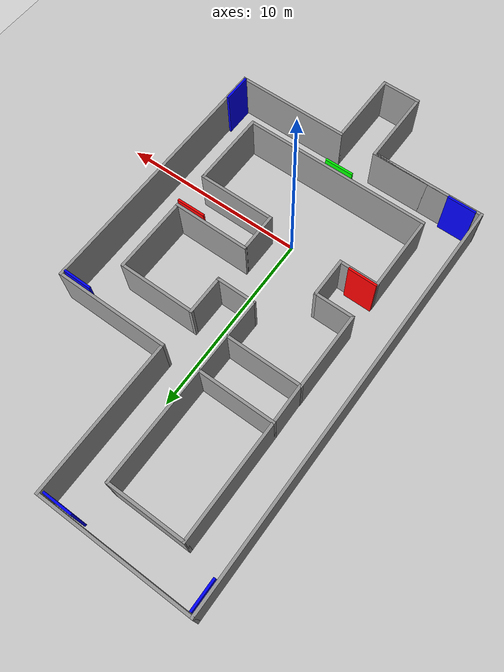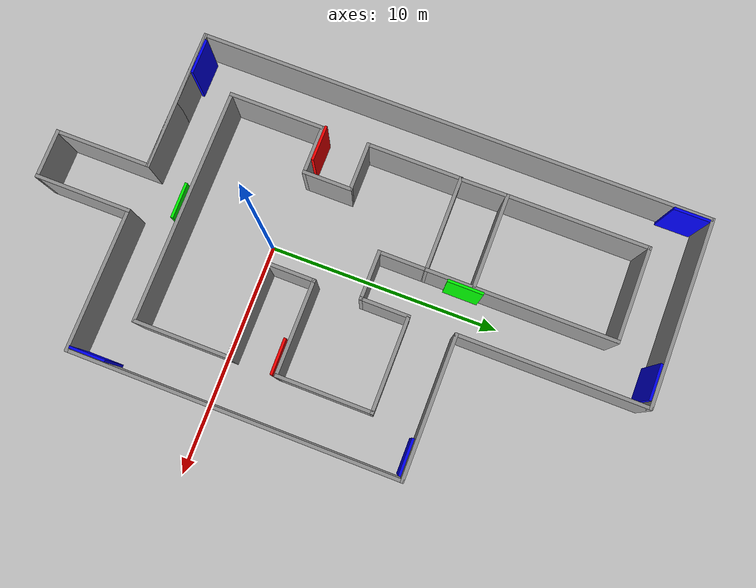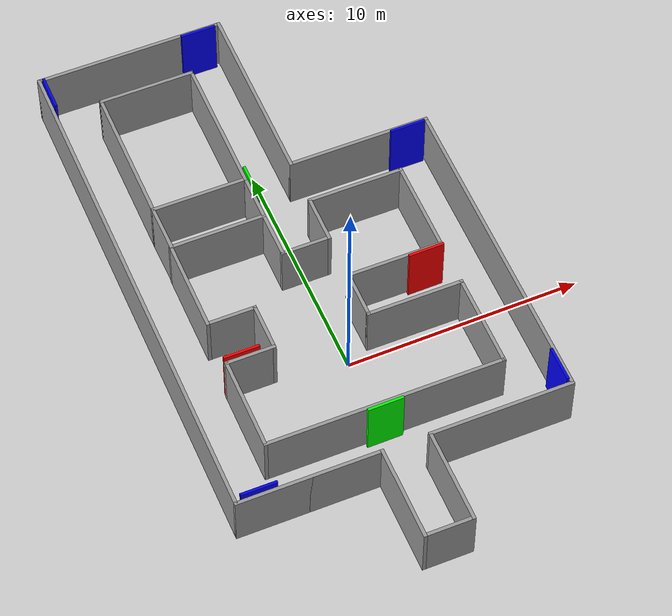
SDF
<sdf version="1.6">
 <world name="default">
  <light name="sun" type="directional">
   <pose>0 0 10 0 -0 0</pose>
   <diffuse>0.8 0.8 0.8 1</diffuse>
   <specular>0.2 0.2 0.2 1</specular>
   <attenuation>
    <range>1000</range>
    <constant>0.9</constant>
    <linear>0.01</linear>
    <quadratic>0.001</quadratic>
   </attenuation>
   <direction>-0.5 0.1 -0.9</direction>
  </light>
  <model name="ground_plane">
   <static>1</static>
   <link name="link">
    <collision name="collision">
     <geometry><plane><normal>0 0 1</normal><size>100 100</size></plane></geometry>
     <surface>
      <contact><collide_bitmask>65535</collide_bitmask></contact>
      <friction><ode><mu>100</mu><mu2>50</mu2></ode></friction>
     </surface>
    </collision>
    <visual name="visual">
     <cast_shadows>0</cast_shadows>
     <geometry><plane><normal>0 0 1</normal><size>100 100</size></plane></geometry>
     <material>
      <script><uri>file://media/materials/scripts/gazebo.material</uri><name>Gazebo/Grey</name></script>
     </material>
    </visual>
   </link>
  </model>
  <gravity>0 0 -9.8</gravity>
  <magnetic_field>6e-06 2.3e-05 -4.2e-05</magnetic_field>
  <atmosphere type="adiabatic"/>
  <physics name="default_physics" default="0" type="ode">
   <max_step_size>0.001</max_step_size>
   <real_time_factor>1</real_time_factor>
   <real_time_update_rate>1000</real_time_update_rate>
  </physics>
  <scene><ambient>0.4 0.4 0.4 1</ambient><background>0.7 0.7 0.7 1</background><shadows>1</shadows></scene>
  <spherical_coordinates>
   <surface_model>EARTH_WGS84</surface_model>
   <latitude_deg>0</latitude_deg>
   <longitude_deg>0</longitude_deg>
   <elevation>0</elevation>
   <heading_deg>0</heading_deg>
  </spherical_coordinates>
  <model name="FullScaleRobotMap">
   <pose>0.041369 3.42801 0 0 -0 1.56267</pose>
   <link name="Wall_13">
    <collision name="Wall_13_Collision">
     <geometry><box><size>4.15 0.15 2.5</size></box></geometry>
     <pose>0 0 1.25 0 -0 0</pose>
    </collision>
    <visual name="Wall_13_Visual">
     <pose>0 0 1.25 0 -0 0</pose>
     <geometry><box><size>4.15 0.15 2.5</size></box></geometry>
     <material>
      <script><uri>file://media/materials/scripts/gazebo.material</uri><name>Gazebo/Grey</name></script>
      <ambient>1 1 1 1</ambient>
     </material>
     <meta><layer>0</layer></meta>
    </visual>
    <pose>-11 -1 0 0 -0 0</pose>
   </link>
   <link name="Wall_15">
    <collision name="Wall_15_Collision">
     <geometry><box><size>6.15 0.15 2.5</size></box></geometry>
     <pose>0 0 1.25 0 -0 0</pose>
    </collision>
    <visual name="Wall_15_Visual">
     <pose>0 0 1.25 0 -0 0</pose>
     <geometry><box><size>6.15 0.15 2.5</size></box></geometry>
     <material>
      <script><uri>file://media/materials/scripts/gazebo.material</uri><name>Gazebo/Grey</name></script>
      <ambient>1 1 1 1</ambient>
     </material>
     <meta><layer>0</layer></meta>
    </visual>
    <pose>-9 -4 0 0 -0 -1.5708</pose>
   </link>
   <link name="Wall_17">
    <collision name="Wall_17_Collision">
     <geometry><box><size>14.15 0.15 2.5</size></box></geometry>
     <pose>0 0 1.25 0 -0 0</pose>
    </collision>
    <visual name="Wall_17_Visual">
     <pose>0 0 1.25 0 -0 0</pose>
     <geometry><box><size>14.15 0.15 2.5</size></box></geometry>
     <material>
      <script><uri>file://media/materials/scripts/gazebo.material</uri><name>Gazebo/Grey</name></script>
      <ambient>1 1 1 1</ambient>
     </material>
     <meta><layer>0</layer></meta>
    </visual>
    <pose>-2 -7 0 0 -0 0</pose>
   </link>
   <link name="Wall_19">
    <collision name="Wall_19_Collision">
     <geometry><box><size>6.15 0.15 2.5</size></box></geometry>
     <pose>0 0 1.25 0 -0 0</pose>
    </collision>
    <visual name="Wall_19_Visual">
     <pose>0 0 1.25 0 -0 0</pose>
     <geometry><box><size>6.15 0.15 2.5</size></box></geometry>
     <material>
      <script><uri>file://media/materials/scripts/gazebo.material</uri><name>Gazebo/Grey</name></script>
      <ambient>1 1 1 1</ambient>
     </material>
     <meta><layer>0</layer></meta>
    </visual>
    <pose>5 -4 0 0 -0 1.5708</pose>
   </link>
   <link name="Wall_21">
    <collision name="Wall_21_Collision">
     <geometry><box><size>8.15 0.15 2.5</size></box></geometry>
     <pose>0 0 1.25 0 -0 0</pose>
    </collision>
    <visual name="Wall_21_Visual">
     <pose>0 0 1.25 0 -0 0</pose>
     <geometry><box><size>8.15 0.15 2.5</size></box></geometry>
     <material>
      <script><uri>file://media/materials/scripts/gazebo.material</uri><name>Gazebo/Grey</name></script>
      <ambient>1 1 1 1</ambient>
     </material>
     <meta><layer>0</layer></meta>
    </visual>
    <pose>9 -1 0 0 -0 0</pose>
   </link>
   <link name="Wall_23">
    <collision name="Wall_23_Collision">
     <geometry><box><size>8.15 0.15 2.5</size></box></geometry>
     <pose>0 0 1.25 0 -0 0</pose>
    </collision>
    <visual name="Wall_23_Visual">
     <pose>0 0 1.25 0 -0 0</pose>
     <geometry><box><size>8.15 0.15 2.5</size></box></geometry>
     <material>
      <script><uri>file://media/materials/scripts/gazebo.material</uri><name>Gazebo/Grey</name></script>
      <ambient>1 1 1 1</ambient>
     </material>
     <meta><layer>0</layer></meta>
    </visual>
    <pose>13 3 0 0 -0 1.5708</pose>
   </link>
   <link name="Wall_25">
    <collision name="Wall_25_Collision">
     <geometry><box><size>6.15 0.15 2.5</size></box></geometry>
     <pose>0 0 1.25 0 -0 0</pose>
    </collision>
    <visual name="Wall_25_Visual">
     <pose>0 0 1.25 0 -0 0</pose>
     <geometry><box><size>6.15 0.15 2.5</size></box></geometry>
     <material>
      <script><uri>file://media/materials/scripts/gazebo.material</uri><name>Gazebo/Grey</name></script>
      <ambient>1 1 1 1</ambient>
     </material>
     <meta><layer>0</layer></meta>
    </visual>
    <pose>-9 4 0 0 -0 -1.5708</pose>
   </link>
   <link name="Wall_26">
    <collision name="Wall_26_Collision">
     <geometry><box><size>6.15 0.15 2.5</size></box></geometry>
     <pose>0 0 1.25 0 -0 0</pose>
    </collision>
    <visual name="Wall_26_Visual">
     <pose>0 0 1.25 0 -0 0</pose>
     <geometry><box><size>6.15 0.15 2.5</size></box></geometry>
     <material>
      <script><uri>file://media/materials/scripts/gazebo.material</uri><name>Gazebo/Grey</name></script>
      <ambient>1 1 1 1</ambient>
     </material>
     <meta><layer>0</layer></meta>
    </visual>
    <pose>-9 4 0 0 -0 1.5708</pose>
   </link>
   <link name="Wall_28">
    <collision name="Wall_28_Collision">
     <geometry><box><size>4.15 0.15 2.5</size></box></geometry>
     <pose>0 0 1.25 0 -0 0</pose>
    </collision>
    <visual name="Wall_28_Visual">
     <pose>0 0 1.25 0 -0 0</pose>
     <geometry><box><size>4.15 0.15 2.5</size></box></geometry>
     <material>
      <script><uri>file://media/materials/scripts/gazebo.material</uri><name>Gazebo/Grey</name></script>
      <ambient>1 1 1 1</ambient>
     </material>
     <meta><layer>0</layer></meta>
    </visual>
    <pose>-11 1 0 0 -0 3.14159</pose>
   </link>
   <link name="Wall_30">
    <collision name="Wall_30_Collision">
     <geometry><box><size>22.15 0.15 2.5</size></box></geometry>
     <pose>0 0 1.25 0 -0 0</pose>
    </collision>
    <visual name="Wall_30_Visual">
     <pose>0 0 1.25 0 -0 0</pose>
     <geometry><box><size>22.15 0.15 2.5</size></box></geometry>
     <material>
      <script><uri>file://media/materials/scripts/gazebo.material</uri><name>Gazebo/Grey</name></script>
      <ambient>1 1 1 1</ambient>
     </material>
     <meta><layer>0</layer></meta>
    </visual>
    <pose>2 7 0 0 -0 0</pose>
   </link>
   <link name="Wall_32">
    <collision name="Wall_32_Collision">
     <geometry><box><size>4.15 0.15 2.5</size></box></geometry>
     <pose>0 0 1.25 0 -0 0</pose>
    </collision>
    <visual name="Wall_32_Visual">
     <pose>0 0 1.25 0 -0 0</pose>
     <geometry><box><size>4.15 0.15 2.5</size></box></geometry>
     <material>
      <script><uri>file://media/materials/scripts/gazebo.material</uri><name>Gazebo/Grey</name></script>
      <ambient>1 1 1 1</ambient>
     </material>
     <meta><layer>0</layer></meta>
    </visual>
    <pose>-5 -5 0 0 -0 0</pose>
   </link>
   <link name="Wall_34">
    <collision name="Wall_34_Collision">
     <geometry><box><size>4.15 0.15 2.5</size></box></geometry>
     <pose>0 0 1.25 0 -0 0</pose>
    </collision>
    <visual name="Wall_34_Visual">
     <pose>0 0 1.25 0 -0 0</pose>
     <geometry><box><size>4.15 0.15 2.5</size></box></geometry>
     <material>
      <script><uri>file://media/materials/scripts/gazebo.material</uri><name>Gazebo/Grey</name></script>
      <ambient>1 1 1 1</ambient>
     </material>
     <meta><layer>0</layer></meta>
    </visual>
    <pose>-3 -3 0 0 -0 1.5708</pose>
   </link>
   <link name="Wall_36">
    <collision name="Wall_36_Collision">
     <geometry><box><size>2.15 0.15 2.5</size></box></geometry>
     <pose>0 0 1.25 0 -0 0</pose>
    </collision>
    <visual name="Wall_36_Visual">
     <pose>0 0 1.25 0 -0 0</pose>
     <geometry><box><size>2.15 0.15 2.5</size></box></geometry>
     <material>
      <script><uri>file://media/materials/scripts/gazebo.material</uri><name>Gazebo/Grey</name></script>
      <ambient>1 1 1 1</ambient>
     </material>
     <meta><layer>0</layer></meta>
    </visual>
    <pose>-2 -1 0 0 -0 0</pose>
   </link>
   <link name="Wall_38">
    <collision name="Wall_38_Collision">
     <geometry><box><size>4.15 0.15 2.5</size></box></geometry>
     <pose>0 0 1.25 0 -0 0</pose>
    </collision>
    <visual name="Wall_38_Visual">
     <pose>0 0 1.25 0 -0 0</pose>
     <geometry><box><size>4.15 0.15 2.5</size></box></geometry>
     <material>
      <script><uri>file://media/materials/scripts/gazebo.material</uri><name>Gazebo/Grey</name></script>
      <ambient>1 1 1 1</ambient>
     </material>
     <meta><layer>0</layer></meta>
    </visual>
    <pose>-1 -3 0 0 -0 -1.5708</pose>
   </link>
   <link name="Wall_40">
    <collision name="Wall_40_Collision">
     <geometry><box><size>4.15 0.15 2.5</size></box></geometry>
     <pose>0 0 1.25 0 -0 0</pose>
    </collision>
    <visual name="Wall_40_Visual">
     <pose>0 0 1.25 0 -0 0</pose>
     <geometry><box><size>4.15 0.15 2.5</size></box></geometry>
     <material>
      <script><uri>file://media/materials/scripts/gazebo.material</uri><name>Gazebo/Grey</name></script>
      <ambient>1 1 1 1</ambient>
     </material>
     <meta><layer>0</layer></meta>
    </visual>
    <pose>1 -5 0 0 -0 0</pose>
   </link>
   <link name="Wall_42">
    <collision name="Wall_42_Collision">
     <geometry><box><size>4.15 0.15 2.5</size></box></geometry>
     <pose>0 0 1.25 0 -0 0</pose>
    </collision>
    <visual name="Wall_42_Visual">
     <pose>0 0 1.25 0 -0 0</pose>
     <geometry><box><size>4.15 0.15 2.5</size></box></geometry>
     <material>
      <script><uri>file://media/materials/scripts/gazebo.material</uri><name>Gazebo/Grey</name></script>
      <ambient>1 1 1 1</ambient>
     </material>
     <meta><layer>0</layer></meta>
    </visual>
    <pose>3 -3 0 0 -0 1.5708</pose>
   </link>
   <link name="Wall_44">
    <collision name="Wall_44_Collision">
     <geometry><box><size>2.15 0.15 2.5</size></box></geometry>
     <pose>0 0 1.25 0 -0 0</pose>
    </collision>
    <visual name="Wall_44_Visual">
     <pose>0 0 1.25 0 -0 0</pose>
     <geometry><box><size>2.15 0.15 2.5</size></box></geometry>
     <material>
      <script><uri>file://media/materials/scripts/gazebo.material</uri><name>Gazebo/Grey</name></script>
      <ambient>1 1 1 1</ambient>
     </material>
     <meta><layer>0</layer></meta>
    </visual>
    <pose>2 -1 0 0 -0 3.14159</pose>
   </link>
   <link name="Wall_46">
    <collision name="Wall_46_Collision">
     <geometry><box><size>2.15 0.15 2.5</size></box></geometry>
     <pose>0 0 1.25 0 -0 0</pose>
    </collision>
    <visual name="Wall_46_Visual">
     <pose>0 0 1.25 0 -0 0</pose>
     <geometry><box><size>2.15 0.15 2.5</size></box></geometry>
     <material>
      <script><uri>file://media/materials/scripts/gazebo.material</uri><name>Gazebo/Grey</name></script>
      <ambient>1 1 1 1</ambient>
     </material>
     <meta><layer>0</layer></meta>
    </visual>
    <pose>1 0 0 0 -0 1.5708</pose>
   </link>
   <link name="Wall_48">
    <collision name="Wall_48_Collision">
     <geometry><box><size>2.15 0.15 2.5</size></box></geometry>
     <pose>0 0 1.25 0 -0 0</pose>
    </collision>
    <visual name="Wall_48_Visual">
     <pose>0 0 1.25 0 -0 0</pose>
     <geometry><box><size>2.15 0.15 2.5</size></box></geometry>
     <material>
      <script><uri>file://media/materials/scripts/gazebo.material</uri><name>Gazebo/Grey</name></script>
      <ambient>1 1 1 1</ambient>
     </material>
     <meta><layer>0</layer></meta>
    </visual>
    <pose>2 1 0 0 -0 0</pose>
   </link>
   <link name="Wall_50">
    <collision name="Wall_50_Collision">
     <geometry><box><size>4.15 0.15 2.5</size></box></geometry>
     <pose>0 0 1.25 0 -0 0</pose>
    </collision>
    <visual name="Wall_50_Visual">
     <pose>0 0 1.25 0 -0 0</pose>
     <geometry><box><size>4.15 0.15 2.5</size></box></geometry>
     <material>
      <script><uri>file://media/materials/scripts/gazebo.material</uri><name>Gazebo/Grey</name></script>
      <ambient>1 1 1 1</ambient>
     </material>
     <meta><layer>0</layer></meta>
    </visual>
    <pose>3 3 0 0 -0 1.5708</pose>
   </link>
   <link name="Wall_52">
    <collision name="Wall_52_Collision">
     <geometry><box><size>4.15 0.15 2.5</size></box></geometry>
     <pose>0 0 1.25 0 -0 0</pose>
    </collision>
    <visual name="Wall_52_Visual">
     <pose>0 0 1.25 0 -0 0</pose>
     <geometry><box><size>4.15 0.15 2.5</size></box></geometry>
     <material>
      <script><uri>file://media/materials/scripts/gazebo.material</uri><name>Gazebo/Grey</name></script>
      <ambient>1 1 1 1</ambient>
     </material>
     <meta><layer>0</layer></meta>
    </visual>
    <pose>1 5 0 0 -0 3.14159</pose>
   </link>
   <link name="Wall_54">
    <collision name="Wall_54_Collision">
     <geometry><box><size>2.15 0.15 2.5</size></box></geometry>
     <pose>0 0 1.25 0 -0 0</pose>
    </collision>
    <visual name="Wall_54_Visual">
     <pose>0 0 1.25 0 -0 0</pose>
     <geometry><box><size>2.15 0.15 2.5</size></box></geometry>
     <material>
      <script><uri>file://media/materials/scripts/gazebo.material</uri><name>Gazebo/Grey</name></script>
      <ambient>1 1 1 1</ambient>
     </material>
     <meta><layer>0</layer></meta>
    </visual>
    <pose>-1 4 0 0 -0 -1.5708</pose>
   </link>
   <link name="Wall_56">
    <collision name="Wall_56_Collision">
     <geometry><box><size>2.15 0.15 2.5</size></box></geometry>
     <pose>0 0 1.25 0 -0 0</pose>
    </collision>
    <visual name="Wall_56_Visual">
     <pose>0 0 1.25 0 -0 0</pose>
     <geometry><box><size>2.15 0.15 2.5</size></box></geometry>
     <material>
      <script><uri>file://media/materials/scripts/gazebo.material</uri><name>Gazebo/Grey</name></script>
      <ambient>1 1 1 1</ambient>
     </material>
     <meta><layer>0</layer></meta>
    </visual>
    <pose>-2 3 0 0 -0 3.14159</pose>
   </link>
   <link name="Wall_58">
    <collision name="Wall_58_Collision">
     <geometry><box><size>2.15 0.15 2.5</size></box></geometry>
     <pose>0 0 1.25 0 -0 0</pose>
    </collision>
    <visual name="Wall_58_Visual">
     <pose>0 0 1.25 0 -0 0</pose>
     <geometry><box><size>2.15 0.15 2.5</size></box></geometry>
     <material>
      <script><uri>file://media/materials/scripts/gazebo.material</uri><name>Gazebo/Grey</name></script>
      <ambient>1 1 1 1</ambient>
     </material>
     <meta><layer>0</layer></meta>
    </visual>
    <pose>-3 4 0 0 -0 1.5708</pose>
   </link>
   <link name="Wall_60">
    <collision name="Wall_60_Collision">
     <geometry><box><size>4.15 0.15 2.5</size></box></geometry>
     <pose>0 0 1.25 0 -0 0</pose>
    </collision>
    <visual name="Wall_60_Visual">
     <pose>0 0 1.25 0 -0 0</pose>
     <geometry><box><size>4.15 0.15 2.5</size></box></geometry>
     <material>
      <script><uri>file://media/materials/scripts/gazebo.material</uri><name>Gazebo/Grey</name></script>
      <ambient>1 1 1 1</ambient>
     </material>
     <meta><layer>0</layer></meta>
    </visual>
    <pose>-5 5 0 0 -0 3.14159</pose>
   </link>
   <link name="Wall_62">
    <collision name="Wall_62_Collision">
     <geometry><box><size>10.15 0.15 2.5</size></box></geometry>
     <pose>0 0 1.25 0 -0 0</pose>
    </collision>
    <visual name="Wall_62_Visual">
     <pose>0 0 1.25 0 -0 0</pose>
     <geometry><box><size>10.15 0.15 2.5</size></box></geometry>
     <material>
      <script><uri>file://media/materials/scripts/gazebo.material</uri><name>Gazebo/Grey</name></script>
      <ambient>1 1 1 1</ambient>
     </material>
     <meta><layer>0</layer></meta>
    </visual>
    <pose>-7 0 0 0 -0 -1.5708</pose>
   </link>
   <link name="Wall_64">
    <collision name="Wall_64_Collision">
     <geometry><box><size>4.15 0.15 2.5</size></box></geometry>
     <pose>0 0 1.25 0 -0 0</pose>
    </collision>
    <visual name="Wall_64_Visual">
     <pose>0 0 1.25 0 -0 0</pose>
     <geometry><box><size>4.15 0.15 2.5</size></box></geometry>
     <material>
      <script><uri>file://media/materials/scripts/gazebo.material</uri><name>Gazebo/Grey</name></script>
      <ambient>1 1 1 1</ambient>
     </material>
     <meta><layer>0</layer></meta>
    </visual>
    <pose>5 3 0 0 -0 1.5708</pose>
   </link>
   <link name="Wall_65">
    <collision name="Wall_65_Collision">
     <geometry><box><size>6.15 0.15 2.5</size></box></geometry>
     <pose>0 0 1.25 0 -0 0</pose>
    </collision>
    <visual name="Wall_65_Visual">
     <pose>0 0 1.25 0 -0 0</pose>
     <geometry><box><size>6.15 0.15 2.5</size></box></geometry>
     <material>
      <script><uri>file://media/materials/scripts/gazebo.material</uri><name>Gazebo/Grey</name></script>
      <ambient>1 1 1 1</ambient>
     </material>
     <meta><layer>0</layer></meta>
    </visual>
    <pose>8 5 0 0 -0 0</pose>
   </link>
   <link name="Wall_66">
    <collision name="Wall_66_Collision">
     <geometry><box><size>4.15 0.15 2.5</size></box></geometry>
     <pose>0 0 1.25 0 -0 0</pose>
    </collision>
    <visual name="Wall_66_Visual">
     <pose>0 0 1.25 0 -0 0</pose>
     <geometry><box><size>4.15 0.15 2.5</size></box></geometry>
     <material>
      <script><uri>file://media/materials/scripts/gazebo.material</uri><name>Gazebo/Grey</name></script>
      <ambient>1 1 1 1</ambient>
     </material>
     <meta><layer>0</layer></meta>
    </visual>
    <pose>11 3 0 0 -0 -1.5708</pose>
   </link>
   <link name="Wall_67">
    <collision name="Wall_67_Collision">
     <geometry><box><size>6.15 0.15 2.5</size></box></geometry>
     <pose>0 0 1.25 0 -0 0</pose>
    </collision>
    <visual name="Wall_67_Visual">
     <pose>0 0 1.25 0 -0 0</pose>
     <geometry><box><size>6.15 0.15 2.5</size></box></geometry>
     <material>
      <script><uri>file://media/materials/scripts/gazebo.material</uri><name>Gazebo/Grey</name></script>
      <ambient>1 1 1 1</ambient>
     </material>
     <meta><layer>0</layer></meta>
    </visual>
    <pose>8 1 0 0 -0 3.14159</pose>
   </link>
   <link name="Wall_8">
    <collision name="Wall_8_Collision">
     <geometry><box><size>2.15 0.15 2.5</size></box></geometry>
     <pose>0 0 1.25 0 -0 0</pose>
    </collision>
    <visual name="Wall_8_Visual">
     <pose>0 0 1.25 0 -0 0</pose>
     <geometry><box><size>2.15 0.15 2.5</size></box></geometry>
     <material>
      <script><uri>file://media/materials/scripts/gazebo.material</uri><name>Gazebo/Grey</name></script>
      <ambient>1 1 1 1</ambient>
     </material>
     <meta><layer>0</layer></meta>
    </visual>
    <pose>-13 0 0 0 -0 -1.5708</pose>
   </link>
   <static>1</static>
  </model>
  <model name="GreenSignalFIXED">
   <link name="link_0">
    <inertial>
     <mass>0.45872</mass>
     <inertia>
      <ixx>0.278241</ixx>
      <ixy>0</ixy>
      <ixz>0</ixz>
      <iyy>0.36633</iyy>
      <iyz>0</iyz>
      <izz>0.0890441</izz>
     </inertia>
    </inertial>
    <self_collide>1</self_collide>
    <visual name="visual">
     <geometry><box><size>1.52213 0.111792 2.69559</size></box></geometry>
     <material>
      <lighting>1</lighting>
      <script><uri>file://media/materials/scripts/gazebo.material</uri><name>Gazebo/Grey</name></script>
      <shader type="pixel"><normal_map>__default__</normal_map></shader>
      <ambient>0 1 0 1</ambient>
      <diffuse>0 1 0 1</diffuse>
      <specular>0 1 0 1</specular>
      <emissive>0 1 0 1</emissive>
     </material>
    </visual>
    <collision name="collision">
     <geometry><box><size>1.52213 0.111792 2.69559</size></box></geometry>
     <surface>
      <friction>
       <ode><mu>1</mu><mu2>1</mu2><fdir1>0 0 0</fdir1><slip1>0</slip1><slip2>0</slip2></ode>
       <torsional>
        <coefficient>1</coefficient>
        <patch_radius>0</patch_radius>
        <surface_radius>0</surface_radius>
        <use_patch_radius>1</use_patch_radius>
        <ode><slip>0</slip></ode>
       </torsional>
      </friction>
      <bounce><restitution_coefficient>0</restitution_coefficient><threshold>1e+06</threshold></bounce>
      <contact>
       <collide_without_contact>0</collide_without_contact>
       <collide_without_contact_bitmask>1</collide_without_contact_bitmask>
       <collide_bitmask>1</collide_bitmask>
       <ode>
        <soft_cfm>0</soft_cfm>
        <soft_erp>0.2</soft_erp>
        <kp>1e+13</kp>
        <kd>1</kd>
        <max_vel>0.01</max_vel>
        <min_depth>0</min_depth>
       </ode>
       <bullet>
        <split_impulse>1</split_impulse>
        <split_impulse_penetration_threshold>-0.01</split_impulse_penetration_threshold>
        <soft_cfm>0</soft_cfm>
        <soft_erp>0.2</soft_erp>
        <kp>1e+13</kp>
        <kd>1</kd>
       </bullet>
      </contact>
     </surface>
    </collision>
   </link>
   <static>0</static>
   <pose>-0.094117 -3.77025 1.34779 0 0 -1e-06</pose>
  </model>
  <model name="GreenSignalFIXED_clone">
   <link name="link_0">
    <inertial>
     <mass>0.45872</mass>
     <inertia>
      <ixx>0.278241</ixx>
      <ixy>0</ixy>
      <ixz>0</ixz>
      <iyy>0.36633</iyy>
      <iyz>0</iyz>
      <izz>0.0890441</izz>
     </inertia>
    </inertial>
    <self_collide>1</self_collide>
    <visual name="visual">
     <geometry><box><size>1.52213 0.111792 2.69559</size></box></geometry>
     <material>
      <lighting>1</lighting>
      <script><uri>file://media/materials/scripts/gazebo.material</uri><name>Gazebo/Grey</name></script>
      <shader type="pixel"><normal_map>__default__</normal_map></shader>
      <ambient>0 1 0 1</ambient>
      <diffuse>0 1 0 1</diffuse>
      <specular>0 1 0 1</specular>
      <emissive>0 1 0 1</emissive>
     </material>
    </visual>
    <collision name="collision">
     <geometry><box><size>1.52213 0.111792 2.69559</size></box></geometry>
     <surface>
      <friction>
       <ode><mu>1</mu><mu2>1</mu2><fdir1>0 0 0</fdir1><slip1>0</slip1><slip2>0</slip2></ode>
       <torsional>
        <coefficient>1</coefficient>
        <patch_radius>0</patch_radius>
        <surface_radius>0</surface_radius>
        <use_patch_radius>1</use_patch_radius>
        <ode><slip>0</slip></ode>
       </torsional>
      </friction>
      <bounce><restitution_coefficient>0</restitution_coefficient><threshold>1e+06</threshold></bounce>
      <contact>
       <collide_without_contact>0</collide_without_contact>
       <collide_without_contact_bitmask>1</collide_without_contact_bitmask>
       <collide_bitmask>1</collide_bitmask>
       <ode>
        <soft_cfm>0</soft_cfm>
        <soft_erp>0.2</soft_erp>
        <kp>1e+13</kp>
        <kd>1</kd>
        <max_vel>0.01</max_vel>
        <min_depth>0</min_depth>
       </ode>
       <bullet>
        <split_impulse>1</split_impulse>
        <split_impulse_penetration_threshold>-0.01</split_impulse_penetration_threshold>
        <soft_cfm>0</soft_cfm>
        <soft_erp>0.2</soft_erp>
        <kp>1e+13</kp>
        <kd>1</kd>
       </bullet>
      </contact>
     </surface>
    </collision>
   </link>
   <static>0</static>
   <pose>-0.788295 8.12717 1.3478 0 0 -1.58099</pose>
  </model>
  <model name="BlueSignalFIXED">
   <link name="link_0">
    <inertial>
     <mass>0.45872</mass>
     <inertia>
      <ixx>0.278241</ixx>
      <ixy>0</ixy>
      <ixz>0</ixz>
      <iyy>0.36633</iyy>
      <iyz>0</iyz>
      <izz>0.0890441</izz>
     </inertia>
    </inertial>
    <self_collide>1</self_collide>
    <visual name="visual">
     <geometry><box><size>1.52213 0.111792 2.69559</size></box></geometry>
     <material>
      <lighting>1</lighting>
      <script><uri>file://media/materials/scripts/gazebo.material</uri><name>Gazebo/Grey</name></script>
      <shader type="pixel"><normal_map>__default__</normal_map></shader>
      <ambient>0 0 1 1</ambient>
      <diffuse>0 0 1 1</diffuse>
      <specular>0 0 1 1</specular>
      <emissive>0 0 1 1</emissive>
     </material>
    </visual>
    <collision name="collision">
     <geometry><box><size>1.52213 0.111792 2.69559</size></box></geometry>
     <surface>
      <friction>
       <ode><mu>1</mu><mu2>1</mu2><fdir1>0 0 0</fdir1><slip1>0</slip1><slip2>0</slip2></ode>
       <torsional>
        <coefficient>1</coefficient>
        <patch_radius>0</patch_radius>
        <surface_radius>0</surface_radius>
        <use_patch_radius>1</use_patch_radius>
        <ode><slip>0</slip></ode>
       </torsional>
      </friction>
      <bounce><restitution_coefficient>0</restitution_coefficient><threshold>1e+06</threshold></bounce>
      <contact>
       <collide_without_contact>0</collide_without_contact>
       <collide_without_contact_bitmask>1</collide_without_contact_bitmask>
       <collide_bitmask>1</collide_bitmask>
       <ode>
        <soft_cfm>0</soft_cfm>
        <soft_erp>0.2</soft_erp>
        <kp>1e+13</kp>
        <kd>1</kd>
        <max_vel>0.01</max_vel>
        <min_depth>0</min_depth>
       </ode>
       <bullet>
        <split_impulse>1</split_impulse>
        <split_impulse_penetration_threshold>-0.01</split_impulse_penetration_threshold>
        <soft_cfm>0</soft_cfm>
        <soft_erp>0.2</soft_erp>
        <kp>1e+13</kp>
        <kd>1</kd>
       </bullet>
      </contact>
     </surface>
    </collision>
   </link>
   <static>0</static>
   <pose>-6.69688 15.6063 1.34779 0 0 -1.57645</pose>
  </model>
  <model name="BlueSignalFIXED_clone">
   <link name="link_0">
    <inertial>
     <mass>0.45872</mass>
     <inertia>
      <ixx>0.278241</ixx>
      <ixy>0</ixy>
      <ixz>0</ixz>
      <iyy>0.36633</iyy>
      <iyz>0</iyz>
      <izz>0.0890441</izz>
     </inertia>
    </inertial>
    <self_collide>1</self_collide>
    <visual name="visual">
     <geometry><box><size>1.52213 0.111792 2.69559</size></box></geometry>
     <material>
      <lighting>1</lighting>
      <script><uri>file://media/materials/scripts/gazebo.material</uri><name>Gazebo/Grey</name></script>
      <shader type="pixel"><normal_map>__default__</normal_map></shader>
      <ambient>0 0 1 1</ambient>
      <diffuse>0 0 1 1</diffuse>
      <specular>0 0 1 1</specular>
      <emissive>0 0 1 1</emissive>
     </material>
    </visual>
    <collision name="collision">
     <geometry><box><size>1.52213 0.111792 2.69559</size></box></geometry>
     <surface>
      <friction>
       <ode><mu>1</mu><mu2>1</mu2><fdir1>0 0 0</fdir1><slip1>0</slip1><slip2>0</slip2></ode>
       <torsional>
        <coefficient>1</coefficient>
        <patch_radius>0</patch_radius>
        <surface_radius>0</surface_radius>
        <use_patch_radius>1</use_patch_radius>
        <ode><slip>0</slip></ode>
       </torsional>
      </friction>
      <bounce><restitution_coefficient>0</restitution_coefficient><threshold>1e+06</threshold></bounce>
      <contact>
       <collide_without_contact>0</collide_without_contact>
       <collide_without_contact_bitmask>1</collide_without_contact_bitmask>
       <collide_bitmask>1</collide_bitmask>
       <ode>
        <soft_cfm>0</soft_cfm>
        <soft_erp>0.2</soft_erp>
        <kp>1e+13</kp>
        <kd>1</kd>
        <max_vel>0.01</max_vel>
        <min_depth>0</min_depth>
       </ode>
       <bullet>
        <split_impulse>1</split_impulse>
        <split_impulse_penetration_threshold>-0.01</split_impulse_penetration_threshold>
        <soft_cfm>0</soft_cfm>
        <soft_erp>0.2</soft_erp>
        <kp>1e+13</kp>
        <kd>1</kd>
       </bullet>
      </contact>
     </surface>
    </collision>
   </link>
   <static>0</static>
   <pose>6.82456 -4.75577 1.34779 0 0 -1.57645</pose>
  </model>
  <model name="BlueSignalFIXED_clone_0">
   <link name="link_0">
    <inertial>
     <mass>0.45872</mass>
     <inertia>
      <ixx>0.278241</ixx>
      <ixy>0</ixy>
      <ixz>0</ixz>
      <iyy>0.36633</iyy>
      <iyz>0</iyz>
      <izz>0.0890441</izz>
     </inertia>
    </inertial>
    <self_collide>1</self_collide>
    <visual name="visual">
     <geometry><box><size>1.52213 0.111792 2.69559</size></box></geometry>
     <material>
      <lighting>1</lighting>
      <script><uri>file://media/materials/scripts/gazebo.material</uri><name>Gazebo/Grey</name></script>
      <shader type="pixel"><normal_map>__default__</normal_map></shader>
      <ambient>0 0 1 1</ambient>
      <diffuse>0 0 1 1</diffuse>
      <specular>0 0 1 1</specular>
      <emissive>0 0 1 1</emissive>
     </material>
    </visual>
    <collision name="collision">
     <geometry><box><size>1.52213 0.111792 2.69559</size></box></geometry>
     <surface>
      <friction>
       <ode><mu>1</mu><mu2>1</mu2><fdir1>0 0 0</fdir1><slip1>0</slip1><slip2>0</slip2></ode>
       <torsional>
        <coefficient>1</coefficient>
        <patch_radius>0</patch_radius>
        <surface_radius>0</surface_radius>
        <use_patch_radius>1</use_patch_radius>
        <ode><slip>0</slip></ode>
       </torsional>
      </friction>
      <bounce><restitution_coefficient>0</restitution_coefficient><threshold>1e+06</threshold></bounce>
      <contact>
       <collide_without_contact>0</collide_without_contact>
       <collide_without_contact_bitmask>1</collide_without_contact_bitmask>
       <collide_bitmask>1</collide_bitmask>
       <ode>
        <soft_cfm>0</soft_cfm>
        <soft_erp>0.2</soft_erp>
        <kp>1e+13</kp>
        <kd>1</kd>
        <max_vel>0.01</max_vel>
        <min_depth>0</min_depth>
       </ode>
       <bullet>
        <split_impulse>1</split_impulse>
        <split_impulse_penetration_threshold>-0.01</split_impulse_penetration_threshold>
        <soft_cfm>0</soft_cfm>
        <soft_erp>0.2</soft_erp>
        <kp>1e+13</kp>
        <kd>1</kd>
       </bullet>
      </contact>
     </surface>
    </collision>
   </link>
   <static>0</static>
   <pose>0.149653 16.24 1.34779 -0 -2e-06 3.13246</pose>
  </model>
  <model name="BlueSignalFIXED_clone_0_clone">
   <link name="link_0">
    <inertial>
     <mass>0.45872</mass>
     <inertia>
      <ixx>0.278241</ixx>
      <ixy>0</ixy>
      <ixz>0</ixz>
      <iyy>0.36633</iyy>
      <iyz>0</iyz>
      <izz>0.0890441</izz>
     </inertia>
    </inertial>
    <self_collide>1</self_collide>
    <visual name="visual">
     <geometry><box><size>1.52213 0.111792 2.69559</size></box></geometry>
     <material>
      <lighting>1</lighting>
      <script><uri>file://media/materials/scripts/gazebo.material</uri><name>Gazebo/Grey</name></script>
      <shader type="pixel"><normal_map>__default__</normal_map></shader>
      <ambient>0 0 1 1</ambient>
      <diffuse>0 0 1 1</diffuse>
      <specular>0 0 1 1</specular>
      <emissive>0 0 1 1</emissive>
     </material>
    </visual>
    <collision name="collision">
     <geometry><box><size>1.52213 0.111792 2.69559</size></box></geometry>
     <surface>
      <friction>
       <ode><mu>1</mu><mu2>1</mu2><fdir1>0 0 0</fdir1><slip1>0</slip1><slip2>0</slip2></ode>
       <torsional>
        <coefficient>1</coefficient>
        <patch_radius>0</patch_radius>
        <surface_radius>0</surface_radius>
        <use_patch_radius>1</use_patch_radius>
        <ode><slip>0</slip></ode>
       </torsional>
      </friction>
      <bounce><restitution_coefficient>0</restitution_coefficient><threshold>1e+06</threshold></bounce>
      <contact>
       <collide_without_contact>0</collide_without_contact>
       <collide_without_contact_bitmask>1</collide_without_contact_bitmask>
       <collide_bitmask>1</collide_bitmask>
       <ode>
        <soft_cfm>0</soft_cfm>
        <soft_erp>0.2</soft_erp>
        <kp>1e+13</kp>
        <kd>1</kd>
        <max_vel>0.01</max_vel>
        <min_depth>0</min_depth>
       </ode>
       <bullet>
        <split_impulse>1</split_impulse>
        <split_impulse_penetration_threshold>-0.01</split_impulse_penetration_threshold>
        <soft_cfm>0</soft_cfm>
        <soft_erp>0.2</soft_erp>
        <kp>1e+13</kp>
        <kd>1</kd>
       </bullet>
      </contact>
     </surface>
    </collision>
   </link>
   <static>0</static>
   <pose>6.18447 8.19935 1.3478 0 -0 3.13248</pose>
  </model>
  <model name="BlueSignalFIXED_clone_0_clone_0">
   <link name="link_0">
    <inertial>
     <mass>0.45872</mass>
     <inertia>
      <ixx>0.278241</ixx>
      <ixy>0</ixy>
      <ixz>0</ixz>
      <iyy>0.36633</iyy>
      <iyz>0</iyz>
      <izz>0.0890441</izz>
     </inertia>
    </inertial>
    <self_collide>1</self_collide>
    <visual name="visual">
     <geometry><box><size>1.52213 0.111792 2.69559</size></box></geometry>
     <material>
      <lighting>1</lighting>
      <script><uri>file://media/materials/scripts/gazebo.material</uri><name>Gazebo/Grey</name></script>
      <shader type="pixel"><normal_map>__default__</normal_map></shader>
      <ambient>0 0 1 1</ambient>
      <diffuse>0 0 1 1</diffuse>
      <specular>0 0 1 1</specular>
      <emissive>0 0 1 1</emissive>
     </material>
    </visual>
    <collision name="collision">
     <geometry><box><size>1.52213 0.111792 2.69559</size></box></geometry>
     <surface>
      <friction>
       <ode><mu>1</mu><mu2>1</mu2><fdir1>0 0 0</fdir1><slip1>0</slip1><slip2>0</slip2></ode>
       <torsional>
        <coefficient>1</coefficient>
        <patch_radius>0</patch_radius>
        <surface_radius>0</surface_radius>
        <use_patch_radius>1</use_patch_radius>
        <ode><slip>0</slip></ode>
       </torsional>
      </friction>
      <bounce><restitution_coefficient>0</restitution_coefficient><threshold>1e+06</threshold></bounce>
      <contact>
       <collide_without_contact>0</collide_without_contact>
       <collide_without_contact_bitmask>1</collide_without_contact_bitmask>
       <collide_bitmask>1</collide_bitmask>
       <ode>
        <soft_cfm>0</soft_cfm>
        <soft_erp>0.2</soft_erp>
        <kp>1e+13</kp>
        <kd>1</kd>
        <max_vel>0.01</max_vel>
        <min_depth>0</min_depth>
       </ode>
       <bullet>
        <split_impulse>1</split_impulse>
        <split_impulse_penetration_threshold>-0.01</split_impulse_penetration_threshold>
        <soft_cfm>0</soft_cfm>
        <soft_erp>0.2</soft_erp>
        <kp>1e+13</kp>
        <kd>1</kd>
       </bullet>
      </contact>
     </surface>
    </collision>
   </link>
   <static>0</static>
   <pose>-6.02119 -5.34517 1.34779 -0 -2e-06 3.13246</pose>
  </model>
  <model name="RedSignalFIXED">
   <link name="link_0">
    <pose>-3.81189 0.614156 -0 0 -0 0</pose>
    <inertial>
     <mass>0.45872</mass>
     <inertia>
      <ixx>0.278241</ixx>
      <ixy>0</ixy>
      <ixz>0</ixz>
      <iyy>0.36633</iyy>
      <iyz>0</iyz>
      <izz>0.0890441</izz>
     </inertia>
    </inertial>
    <self_collide>1</self_collide>
    <visual name="visual">
     <geometry><box><size>1.52213 0.111792 2.69559</size></box></geometry>
     <material>
      <lighting>1</lighting>
      <script><uri>file://media/materials/scripts/gazebo.material</uri><name>Gazebo/Grey</name></script>
      <shader type="pixel"><normal_map>__default__</normal_map></shader>
      <ambient>1 0 0 1</ambient>
      <diffuse>1 0 0 1</diffuse>
      <specular>1 0 0 1</specular>
      <emissive>1 0 0 1</emissive>
     </material>
    </visual>
    <collision name="collision">
     <geometry><box><size>1.52213 0.111792 2.69559</size></box></geometry>
     <surface>
      <friction>
       <ode><mu>1</mu><mu2>1</mu2><fdir1>0 0 0</fdir1><slip1>0</slip1><slip2>0</slip2></ode>
       <torsional>
        <coefficient>1</coefficient>
        <patch_radius>0</patch_radius>
        <surface_radius>0</surface_radius>
        <use_patch_radius>1</use_patch_radius>
        <ode><slip>0</slip></ode>
       </torsional>
      </friction>
      <bounce><restitution_coefficient>0</restitution_coefficient><threshold>1e+06</threshold></bounce>
      <contact>
       <collide_without_contact>0</collide_without_contact>
       <collide_without_contact_bitmask>1</collide_without_contact_bitmask>
       <collide_bitmask>1</collide_bitmask>
       <ode>
        <soft_cfm>0</soft_cfm>
        <soft_erp>0.2</soft_erp>
        <kp>1e+13</kp>
        <kd>1</kd>
        <max_vel>0.01</max_vel>
        <min_depth>0</min_depth>
       </ode>
       <bullet>
        <split_impulse>1</split_impulse>
        <split_impulse_penetration_threshold>-0.01</split_impulse_penetration_threshold>
        <soft_cfm>0</soft_cfm>
        <soft_erp>0.2</soft_erp>
        <kp>1e+13</kp>
        <kd>1</kd>
       </bullet>
      </contact>
     </surface>
    </collision>
   </link>
   <static>0</static>
   <pose>-8.08664 1.26516 1.34778 0 2e-06 3.13247</pose>
  </model>
  <model name="RedSignalFIXED_clone">
   <link name="link_0">
    <pose>-3.81189 0.614156 -0 0 -0 0</pose>
    <inertial>
     <mass>0.45872</mass>
     <inertia>
      <ixx>0.278241</ixx>
      <ixy>0</ixy>
      <ixz>0</ixz>
      <iyy>0.36633</iyy>
      <iyz>0</iyz>
      <izz>0.0890441</izz>
     </inertia>
    </inertial>
    <self_collide>1</self_collide>
    <visual name="visual">
     <geometry><box><size>1.52213 0.111792 2.69559</size></box></geometry>
     <material>
      <lighting>1</lighting>
      <script><uri>file://media/materials/scripts/gazebo.material</uri><name>Gazebo/Grey</name></script>
      <shader type="pixel"><normal_map>__default__</normal_map></shader>
      <ambient>1 0 0 1</ambient>
      <diffuse>1 0 0 1</diffuse>
      <specular>1 0 0 1</specular>
      <emissive>1 0 0 1</emissive>
     </material>
    </visual>
    <collision name="collision">
     <geometry><box><size>1.52213 0.111792 2.69559</size></box></geometry>
     <surface>
      <friction>
       <ode><mu>1</mu><mu2>1</mu2><fdir1>0 0 0</fdir1><slip1>0</slip1><slip2>0</slip2></ode>
       <torsional>
        <coefficient>1</coefficient>
        <patch_radius>0</patch_radius>
        <surface_radius>0</surface_radius>
        <use_patch_radius>1</use_patch_radius>
        <ode><slip>0</slip></ode>
       </torsional>
      </friction>
      <bounce><restitution_coefficient>0</restitution_coefficient><threshold>1e+06</threshold></bounce>
      <contact>
       <collide_without_contact>0</collide_without_contact>
       <collide_without_contact_bitmask>1</collide_without_contact_bitmask>
       <collide_bitmask>1</collide_bitmask>
       <ode>
        <soft_cfm>0</soft_cfm>
        <soft_erp>0.2</soft_erp>
        <kp>1e+13</kp>
        <kd>1</kd>
        <max_vel>0.01</max_vel>
        <min_depth>0</min_depth>
       </ode>
       <bullet>
        <split_impulse>1</split_impulse>
        <split_impulse_penetration_threshold>-0.01</split_impulse_penetration_threshold>
        <soft_cfm>0</soft_cfm>
        <soft_erp>0.2</soft_erp>
        <kp>1e+13</kp>
        <kd>1</kd>
       </bullet>
      </contact>
     </surface>
    </collision>
   </link>
   <static>0</static>
   <pose>0.509383 2.81945 1.34779 0 0 -3.13734</pose>
  </model>
  <model name="2m_wall">
   <pose>-0.926739 7.38739 0 0 0 -1.58099</pose>
   <link name="Wall_0">
    <collision name="Wall_0_Collision">
     <geometry><box><size>2 0.15 2.5</size></box></geometry>
     <pose>0 0 1.25 0 -0 0</pose>
    </collision>
    <visual name="Wall_0_Visual">
     <pose>0 0 1.25 0 -0 0</pose>
     <geometry><box><size>2 0.15 2.5</size></box></geometry>
     <material>
      <script><uri>file://media/materials/scripts/gazebo.material</uri><name>Gazebo/Grey</name></script>
      <ambient>1 1 1 1</ambient>
     </material>
     <meta><layer>0</layer></meta>
    </visual>
   </link>
   <static>1</static>
  </model>
  <model name="2m_wall_clone">
   <pose>-4.91268 7.4228 0 0 0 -1.56744</pose>
   <link name="Wall_0">
    <collision name="Wall_0_Collision">
     <geometry><box><size>2 0.15 2.5</size></box></geometry>
     <pose>0 0 1.25 0 -0 0</pose>
    </collision>
    <visual name="Wall_0_Visual">
     <pose>0 0 1.25 0 -0 0</pose>
     <geometry><box><size>2 0.15 2.5</size></box></geometry>
     <material>
      <script><uri>file://media/materials/scripts/gazebo.material</uri><name>Gazebo/Grey</name></script>
      <ambient>1 1 1 1</ambient>
     </material>
     <meta><layer>0</layer></meta>
    </visual>
   </link>
   <static>1</static>
  </model>
 </world>
</sdf>
